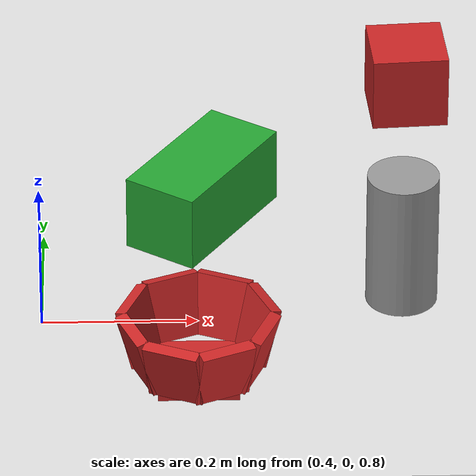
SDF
<sdf version="1.6">
 <world name="default">
  <light name="sun" type="directional">
   <pose>0 0 10 0 -0 0</pose>
   <diffuse>0.8 0.8 0.8 1</diffuse>
   <specular>0.2 0.2 0.2 1</specular>
   <attenuation>
    <range>1000</range>
    <constant>0.9</constant>
    <linear>0.01</linear>
    <quadratic>0.001</quadratic>
   </attenuation>
   <direction>-0.5 0.1 -0.9</direction>
  </light>
  <physics name="dart_2ms" default="0" type="dart">
   <max_step_size>0.002</max_step_size>
   <real_time_factor>1</real_time_factor>
   <real_time_update_rate>500</real_time_update_rate>
   <dart><solver><solver_type>pgs</solver_type></solver></dart>
  </physics>
  <model name="ground_plane">
   <static>1</static>
   <link name="link">
    <collision name="collision">
     <geometry><plane><normal>0 0 1</normal><size>100 100</size></plane></geometry>
     <surface>
      <contact><collide_bitmask>65535</collide_bitmask></contact>
      <friction><ode><mu>100</mu><mu2>50</mu2></ode></friction>
     </surface>
    </collision>
    <visual name="visual">
     <cast_shadows>0</cast_shadows>
     <geometry><plane><normal>0 0 1</normal><size>100 100</size></plane></geometry>
     <material>
      <script><uri>file://media/materials/scripts/gazebo.material</uri><name>Gazebo/Grey</name></script>
     </material>
    </visual>
   </link>
  </model>
  <gravity>0 0 -9.8</gravity>
  <magnetic_field>6e-06 2.3e-05 -4.2e-05</magnetic_field>
  <atmosphere type="adiabatic"/>
  <scene><ambient>0.4 0.4 0.4 1</ambient><background>0.7 0.7 0.7 1</background><shadows>1</shadows></scene>
  <audio><device>default</device></audio>
  <spherical_coordinates>
   <surface_model>EARTH_WGS84</surface_model>
   <latitude_deg>0</latitude_deg>
   <longitude_deg>0</longitude_deg>
   <elevation>0</elevation>
   <heading_deg>0</heading_deg>
  </spherical_coordinates>
  <model name="VelmaCylinder">
   <link name="link_0">
    <inertial>
     <mass>1</mass>
     <inertia>
      <ixx>0.166667</ixx>
      <ixy>0</ixy>
      <ixz>0</ixz>
      <iyy>0.166667</iyy>
      <iyz>0</iyz>
      <izz>0.166667</izz>
     </inertia>
    </inertial>
    <visual name="visual">
     <geometry><mesh><uri>model://VelmaCylinder/VelmaCylinder.dae</uri><scale>1 1 1</scale></mesh></geometry>
     <material>
      <lighting>1</lighting>
      <script><uri>file://media/materials/scripts/gazebo.material</uri><name>Gazebo/Grey</name></script>
      <shader type="pixel"><normal_map>__default__</normal_map></shader>
      <ambient>0.3 0.3 0.3 1</ambient>
      <diffuse>0.7 0.7 0.7 1</diffuse>
      <specular>0.01 0.01 0.01 1</specular>
      <emissive>0 0 0 1</emissive>
     </material>
    </visual>
    <collision name="collision_2">
     <pose>0 0 0.02 0 -0 0</pose>
     <geometry><sphere><radius>0.045</radius></sphere></geometry>
     <surface>
      <friction>
       <ode><mu>1</mu><mu2>1</mu2><fdir1>0 0 0</fdir1><slip1>0</slip1><slip2>0</slip2></ode>
       <torsional>
        <coefficient>1</coefficient>
        <patch_radius>0</patch_radius>
        <surface_radius>0</surface_radius>
        <use_patch_radius>1</use_patch_radius>
        <ode><slip>0</slip></ode>
       </torsional>
      </friction>
      <bounce><restitution_coefficient>0</restitution_coefficient><threshold>1e+06</threshold></bounce>
      <contact>
       <collide_without_contact>0</collide_without_contact>
       <collide_without_contact_bitmask>1</collide_without_contact_bitmask>
       <collide_bitmask>1</collide_bitmask>
       <ode>
        <soft_cfm>0</soft_cfm>
        <soft_erp>0.2</soft_erp>
        <kp>1e+13</kp>
        <kd>1</kd>
        <max_vel>0.01</max_vel>
        <min_depth>0</min_depth>
       </ode>
       <bullet>
        <split_impulse>1</split_impulse>
        <split_impulse_penetration_threshold>-0.01</split_impulse_penetration_threshold>
        <soft_cfm>0</soft_cfm>
        <soft_erp>0.2</soft_erp>
        <kp>1e+13</kp>
        <kd>1</kd>
       </bullet>
      </contact>
     </surface>
    </collision>
    <collision name="collision_3">
     <geometry><sphere><radius>0.045</radius></sphere></geometry>
     <surface>
      <friction>
       <ode><mu>1</mu><mu2>1</mu2><fdir1>0 0 0</fdir1><slip1>0</slip1><slip2>0</slip2></ode>
       <torsional>
        <coefficient>1</coefficient>
        <patch_radius>0</patch_radius>
        <surface_radius>0</surface_radius>
        <use_patch_radius>1</use_patch_radius>
        <ode><slip>0</slip></ode>
       </torsional>
      </friction>
      <bounce><restitution_coefficient>0</restitution_coefficient><threshold>1e+06</threshold></bounce>
      <contact>
       <collide_without_contact>0</collide_without_contact>
       <collide_without_contact_bitmask>1</collide_without_contact_bitmask>
       <collide_bitmask>1</collide_bitmask>
       <ode>
        <soft_cfm>0</soft_cfm>
        <soft_erp>0.2</soft_erp>
        <kp>1e+13</kp>
        <kd>1</kd>
        <max_vel>0.01</max_vel>
        <min_depth>0</min_depth>
       </ode>
       <bullet>
        <split_impulse>1</split_impulse>
        <split_impulse_penetration_threshold>-0.01</split_impulse_penetration_threshold>
        <soft_cfm>0</soft_cfm>
        <soft_erp>0.2</soft_erp>
        <kp>1e+13</kp>
        <kd>1</kd>
       </bullet>
      </contact>
     </surface>
    </collision>
    <collision name="collision_1">
     <pose>-0 0 0.05 0 -0 0</pose>
     <geometry><sphere><radius>0.045</radius></sphere></geometry>
     <surface>
      <friction>
       <ode><mu>1</mu><mu2>1</mu2><fdir1>0 0 0</fdir1><slip1>0</slip1><slip2>0</slip2></ode>
       <torsional>
        <coefficient>1</coefficient>
        <patch_radius>0</patch_radius>
        <surface_radius>0</surface_radius>
        <use_patch_radius>1</use_patch_radius>
        <ode><slip>0</slip></ode>
       </torsional>
      </friction>
      <bounce><restitution_coefficient>0</restitution_coefficient><threshold>1e+06</threshold></bounce>
      <contact>
       <collide_without_contact>0</collide_without_contact>
       <collide_without_contact_bitmask>1</collide_without_contact_bitmask>
       <collide_bitmask>1</collide_bitmask>
       <ode>
        <soft_cfm>0</soft_cfm>
        <soft_erp>0.2</soft_erp>
        <kp>1e+13</kp>
        <kd>1</kd>
        <max_vel>0.01</max_vel>
        <min_depth>0</min_depth>
       </ode>
       <bullet>
        <split_impulse>1</split_impulse>
        <split_impulse_penetration_threshold>-0.01</split_impulse_penetration_threshold>
        <soft_cfm>0</soft_cfm>
        <soft_erp>0.2</soft_erp>
        <kp>1e+13</kp>
        <kd>1</kd>
       </bullet>
      </contact>
     </surface>
    </collision>
    <collision name="collision_4">
     <pose>0 0 -0.03 0 -0 0</pose>
     <geometry><sphere><radius>0.045</radius></sphere></geometry>
     <surface>
      <friction>
       <ode><mu>1</mu><mu2>1</mu2><fdir1>0 0 0</fdir1><slip1>0</slip1><slip2>0</slip2></ode>
       <torsional>
        <coefficient>1</coefficient>
        <patch_radius>0</patch_radius>
        <surface_radius>0</surface_radius>
        <use_patch_radius>1</use_patch_radius>
        <ode><slip>0</slip></ode>
       </torsional>
      </friction>
      <bounce><restitution_coefficient>0</restitution_coefficient><threshold>1e+06</threshold></bounce>
      <contact>
       <collide_without_contact>0</collide_without_contact>
       <collide_without_contact_bitmask>1</collide_without_contact_bitmask>
       <collide_bitmask>1</collide_bitmask>
       <ode>
        <soft_cfm>0</soft_cfm>
        <soft_erp>0.2</soft_erp>
        <kp>1e+13</kp>
        <kd>1</kd>
        <max_vel>0.01</max_vel>
        <min_depth>0</min_depth>
       </ode>
       <bullet>
        <split_impulse>1</split_impulse>
        <split_impulse_penetration_threshold>-0.01</split_impulse_penetration_threshold>
        <soft_cfm>0</soft_cfm>
        <soft_erp>0.2</soft_erp>
        <kp>1e+13</kp>
        <kd>1</kd>
       </bullet>
      </contact>
     </surface>
    </collision>
    <collision name="collision_5">
     <pose>0 0 -0.04 0 -0 0</pose>
     <geometry><sphere><radius>0.045</radius></sphere></geometry>
     <surface>
      <friction>
       <ode><mu>1</mu><mu2>1</mu2><fdir1>0 0 0</fdir1><slip1>0</slip1><slip2>0</slip2></ode>
       <torsional>
        <coefficient>1</coefficient>
        <patch_radius>0</patch_radius>
        <surface_radius>0</surface_radius>
        <use_patch_radius>1</use_patch_radius>
        <ode><slip>0</slip></ode>
       </torsional>
      </friction>
      <bounce><restitution_coefficient>0</restitution_coefficient><threshold>1e+06</threshold></bounce>
      <contact>
       <collide_without_contact>0</collide_without_contact>
       <collide_without_contact_bitmask>1</collide_without_contact_bitmask>
       <collide_bitmask>1</collide_bitmask>
       <ode>
        <soft_cfm>0</soft_cfm>
        <soft_erp>0.2</soft_erp>
        <kp>1e+13</kp>
        <kd>1</kd>
        <max_vel>0.01</max_vel>
        <min_depth>0</min_depth>
       </ode>
       <bullet>
        <split_impulse>1</split_impulse>
        <split_impulse_penetration_threshold>-0.01</split_impulse_penetration_threshold>
        <soft_cfm>0</soft_cfm>
        <soft_erp>0.2</soft_erp>
        <kp>1e+13</kp>
        <kd>1</kd>
       </bullet>
      </contact>
     </surface>
    </collision>
    <collision name="collision_6">
     <pose>0 0 -0.09 0 -0 0</pose>
     <geometry><box><size>0.09 0.09 0.01</size></box></geometry>
     <surface>
      <friction>
       <ode><mu>1</mu><mu2>1</mu2><fdir1>0 0 0</fdir1><slip1>0</slip1><slip2>0</slip2></ode>
       <torsional>
        <coefficient>1</coefficient>
        <patch_radius>0</patch_radius>
        <surface_radius>0</surface_radius>
        <use_patch_radius>1</use_patch_radius>
        <ode><slip>0</slip></ode>
       </torsional>
      </friction>
      <bounce><restitution_coefficient>0</restitution_coefficient><threshold>1e+06</threshold></bounce>
      <contact>
       <collide_without_contact>0</collide_without_contact>
       <collide_without_contact_bitmask>1</collide_without_contact_bitmask>
       <collide_bitmask>1</collide_bitmask>
       <ode>
        <soft_cfm>0</soft_cfm>
        <soft_erp>0.2</soft_erp>
        <kp>1e+13</kp>
        <kd>1</kd>
        <max_vel>0.01</max_vel>
        <min_depth>0</min_depth>
       </ode>
       <bullet>
        <split_impulse>1</split_impulse>
        <split_impulse_penetration_threshold>-0.01</split_impulse_penetration_threshold>
        <soft_cfm>0</soft_cfm>
        <soft_erp>0.2</soft_erp>
        <kp>1e+13</kp>
        <kd>1</kd>
       </bullet>
      </contact>
     </surface>
    </collision>
   </link>
   <static>0</static>
   <pose>0.854341 -0.095703 0.987925 3e-06 -6e-06 -0.000205</pose>
  </model>
  <model name="box1">
   <link name="link">
    <inertial>
     <mass>0.3</mass>
     <inertia><ixx>0.0005</ixx><ixy>0</ixy><ixz>0</ixz><iyy>0.0005</iyy><iyz>0</iyz><izz>0.0005</izz></inertia>
    </inertial>
    <collision name="box"><geometry><box><size>0.1 0.1 0.1</size></box></geometry></collision>
    <visual name="box">
     <geometry><box><size>0.1 0.1 0.1</size></box></geometry>
     <material>
      <script><uri>file://media/materials/scripts/gazebo.material</uri><name>Gazebo/Red</name></script>
     </material>
    </visual>
   </link>
   <pose>0.883246 0.365312 0.942925 2e-06 -1e-06 0.068449</pose>
  </model>
  <model name="box2">
   <link name="link">
    <inertial>
     <mass>0.3</mass>
     <inertia><ixx>0.00125</ixx><ixy>0</ixy><ixz>0</ixz><iyy>0.00125</iyy><iyz>0</iyz><izz>0.0005</izz></inertia>
    </inertial>
    <collision name="box"><geometry><box><size>0.1 0.1 0.2</size></box></geometry></collision>
    <visual name="box">
     <geometry><box><size>0.1 0.1 0.2</size></box></geometry>
     <material>
      <script><uri>file://media/materials/scripts/gazebo.material</uri><name>Gazebo/Green</name></script>
     </material>
    </visual>
   </link>
   <pose>0.607183 0.091561 0.94292 -3.09058 1.57075 -2.10905</pose>
  </model>
  <model name="bowl_high">
   <link name="link">
    <inertial>
     <pose>0 0 0.035 0 -0 0</pose>
     <mass>0.1</mass>
     <inertia>
      <ixx>0.000250308</ixx>
      <ixy>0</ixy>
      <ixz>0</ixz>
      <iyy>0.000250308</iyy>
      <iyz>0</iyz>
      <izz>0.0004802</izz>
     </inertia>
    </inertial>
    <collision name="side1">
     <pose>0.0301 0.07183 0.05588 -0.265282 -0 -0.392688</pose>
     <geometry><box><size>0.07 0.015 0.08</size></box></geometry>
    </collision>
    <collision name="side2">
     <pose>-0.03 0.0717 0.05588 -0.265282 -0 0.392688</pose>
     <geometry><box><size>0.07 0.015 0.08</size></box></geometry>
    </collision>
    <collision name="side3">
     <pose>-0.0717 0.03 0.05588 -0.265282 -0 1.17806</pose>
     <geometry><box><size>0.07 0.015 0.08</size></box></geometry>
    </collision>
    <collision name="side4">
     <pose>-0.0717 -0.03 0.05588 -0.265282 -0 1.96344</pose>
     <geometry><box><size>0.07 0.015 0.08</size></box></geometry>
    </collision>
    <collision name="side5">
     <pose>-0.03 -0.0717 0.05588 -0.265282 0 2.74881</pose>
     <geometry><box><size>0.07 0.015 0.08</size></box></geometry>
    </collision>
    <collision name="side6">
     <pose>0.03 -0.0717 0.05588 -0.265282 -0 -2.73155</pose>
     <geometry><box><size>0.07 0.015 0.08</size></box></geometry>
    </collision>
    <collision name="side7">
     <pose>0.0717 -0.03 0.05588 -0.265282 -0 -1.96362</pose>
     <geometry><box><size>0.07 0.015 0.08</size></box></geometry>
    </collision>
    <collision name="side8">
     <pose>0.0717 0.03 0.05588 -0.265282 -0 -1.1608</pose>
     <geometry><box><size>0.07 0.015 0.08</size></box></geometry>
    </collision>
    <collision name="bottom">
     <pose>0 0 0.01 0 -0 0</pose>
     <geometry><box><size>0.1 0.1 0.02</size></box></geometry>
    </collision>
    <visual name="side1">
     <pose>0.0301 0.07183 0.05588 -0.265282 -0 -0.392688</pose>
     <geometry><box><size>0.07 0.015 0.08</size></box></geometry>
     <material>
      <script><uri>file://media/materials/scripts/gazebo.material</uri><name>Gazebo/Red</name></script>
     </material>
    </visual>
    <visual name="side2">
     <pose>-0.03 0.0717 0.05588 -0.265282 -0 0.392688</pose>
     <geometry><box><size>0.07 0.015 0.08</size></box></geometry>
     <material>
      <script><uri>file://media/materials/scripts/gazebo.material</uri><name>Gazebo/Red</name></script>
     </material>
    </visual>
    <visual name="side3">
     <pose>-0.0717 0.03 0.05588 -0.265282 -0 1.17806</pose>
     <geometry><box><size>0.07 0.015 0.08</size></box></geometry>
     <material>
      <script><uri>file://media/materials/scripts/gazebo.material</uri><name>Gazebo/Red</name></script>
     </material>
    </visual>
    <visual name="side4">
     <pose>-0.0717 -0.03 0.05588 -0.265282 -0 1.96344</pose>
     <geometry><box><size>0.07 0.015 0.08</size></box></geometry>
     <material>
      <script><uri>file://media/materials/scripts/gazebo.material</uri><name>Gazebo/Red</name></script>
     </material>
    </visual>
    <visual name="side5">
     <pose>-0.03 -0.0717 0.05588 -0.265282 0 2.74881</pose>
     <geometry><box><size>0.07 0.015 0.08</size></box></geometry>
     <material>
      <script><uri>file://media/materials/scripts/gazebo.material</uri><name>Gazebo/Red</name></script>
     </material>
    </visual>
    <visual name="side6">
     <pose>0.03 -0.0717 0.05588 -0.265282 -0 -2.73155</pose>
     <geometry><box><size>0.07 0.015 0.08</size></box></geometry>
     <material>
      <script><uri>file://media/materials/scripts/gazebo.material</uri><name>Gazebo/Red</name></script>
     </material>
    </visual>
    <visual name="side7">
     <pose>0.0717 -0.03 0.05588 -0.265282 -0 -1.96362</pose>
     <geometry><box><size>0.07 0.015 0.08</size></box></geometry>
     <material>
      <script><uri>file://media/materials/scripts/gazebo.material</uri><name>Gazebo/Red</name></script>
     </material>
    </visual>
    <visual name="side8">
     <pose>0.0717 0.03 0.05588 -0.265282 -0 -1.1608</pose>
     <geometry><box><size>0.07 0.015 0.08</size></box></geometry>
     <material>
      <script><uri>file://media/materials/scripts/gazebo.material</uri><name>Gazebo/Red</name></script>
     </material>
    </visual>
    <visual name="bottom">
     <pose>0 0 0.01 0 -0 0</pose>
     <geometry><box><size>0.1 0.1 0.02</size></box></geometry>
     <material>
      <script><uri>file://media/materials/scripts/gazebo.material</uri><name>Gazebo/Red</name></script>
     </material>
    </visual>
   </link>
   <pose>0.597629 -0.260766 0.892925 0 -1e-06 -0.001506</pose>
  </model>
 </world>
</sdf>
